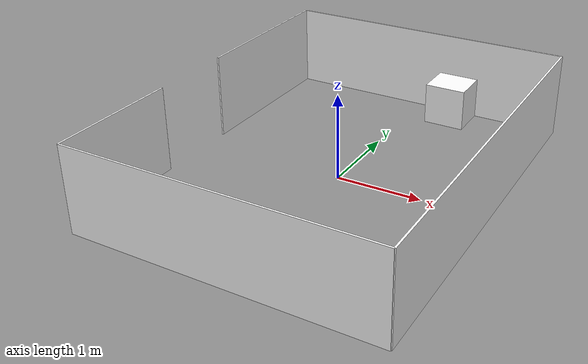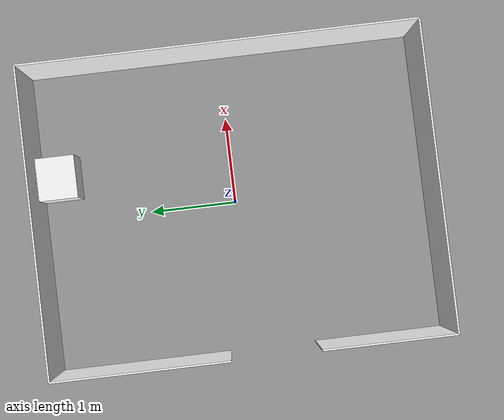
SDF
<sdf version="1.6">
    <model name="bedroom">
        <static>true</static>
        <!-- East wall -->
        <link name="east_wall">
            <pose>1.75 0 0.5 0 0 0</pose>
            <visual name="visual_east_wall">
                <geometry>
                    <box>
                        <size>0.02 4.5 1.0</size>
                    </box>
                </geometry>
                <material>
                    <ambient>1 1 1 1</ambient> <!-- White color, fully opaque -->
                </material>
            </visual>
            <collision name="collision_east_wall">
                <geometry>
                    <box>
                        <size>0.02 4.5 1.0</size>
                    </box>
                </geometry>
            </collision>
        </link>

        <!-- North wall -->
        <link name="north_wall">
            <pose>0 2.25 0.5 0 0 0</pose>
            <visual name="visual_north_wall">
                <geometry>
                    <box>
                        <size>3.5 0.02 1.0</size>
                    </box>
                </geometry>
                <material>
                    <ambient>1 1 1 1</ambient>
                </material>
            </visual>
            <collision name="collision_north_wall">
                <geometry>
                    <box>
                        <size>3.5 0.02 1.0</size>
                    </box>
                </geometry>
            </collision>
        </link>

        <!-- South wall -->
        <link name="south_wall">
            <pose>0 -2.25 0.5 0 0 0</pose>
            <visual name="visual_south_wall">
                <geometry>
                    <box>
                        <size>3.5 0.02 1.0</size>
                    </box>
                </geometry>
                <material>
                    <ambient>1 1 1 1</ambient>
                </material>
            </visual>
            <collision name="collision_south_wall">
                <geometry>
                    <box>
                        <size>3.5 0.02 1.0</size>
                    </box>
                </geometry>
            </collision>
        </link>

        <!-- West wall 1 -->
        <link name="west_wall_1">
            <pose>-1.75 1.25 0.5 0 0 0</pose>
            <visual name="visual_west_wall_1">
                <geometry>
                    <box>
                        <size>0.02 2.0 1.0</size>
                    </box>
                </geometry>
                <material>
                    <ambient>1 1 1 1</ambient>
                </material>
            </visual>
            <collision name="collision_west_wall_1">
                <geometry>
                    <box>
                        <size>0.02 2.0 1.0</size>
                    </box>
                </geometry>
            </collision>
        </link>

        <!-- West wall 2 -->
        <link name="west_wall_2">
            <pose>-1.75 -1.5 0.5 0 0 0</pose>
            <visual name="visual_west_wall_2">
                <geometry>
                    <box>
                        <size>0.02 1.5 1.0</size>
                    </box>
                </geometry>
                <material>
                    <ambient>1 1 1 1</ambient>
                </material>
            </visual>
            <collision name="collision_west_wall_2">
                <geometry>
                    <box>
                        <size>0.02 1.5 1.0</size>
                    </box>
                </geometry>
            </collision>
        </link>

        <!-- Furniture -->
        <include>
            <uri>model://ar_ss26/furniture/night_table</uri>
            <pose>0.5 2.0080844163894653 0.0 0 0 0</pose>
            <static>true</static>
        </include>

    </model>
</sdf>

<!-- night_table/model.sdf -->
<sdf version="1.6">
    <model name="night_table">
        <static>true</static>
        <!-- Body of the night table -->
        <link name="plate">
            <pose>0 0 0.25 0 0 0</pose>
            <visual name="visual_plate">
                <geometry>
                    <box>
                        <size>0.495 0.45 0.5</size>
                    </box>
                </geometry>
                <material>
                    <ambient>1 1 1 1</ambient> <!-- White color, fully opaque -->
                </material>
            </visual>
            <collision name="collision_plate">
                <geometry>
                    <box>
                        <size>0.495 0.45 0.5</size>
                    </box>
                </geometry>
            </collision>
        </link>
    </model>
</sdf>
